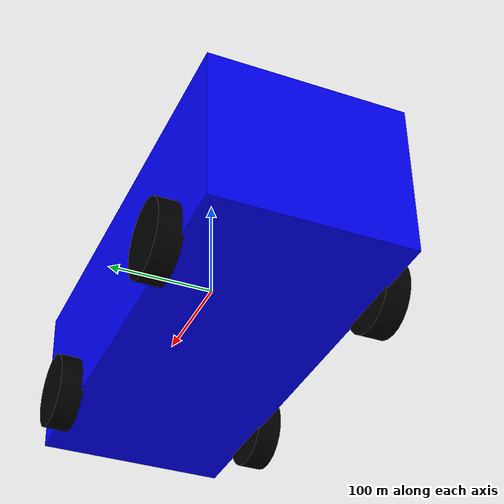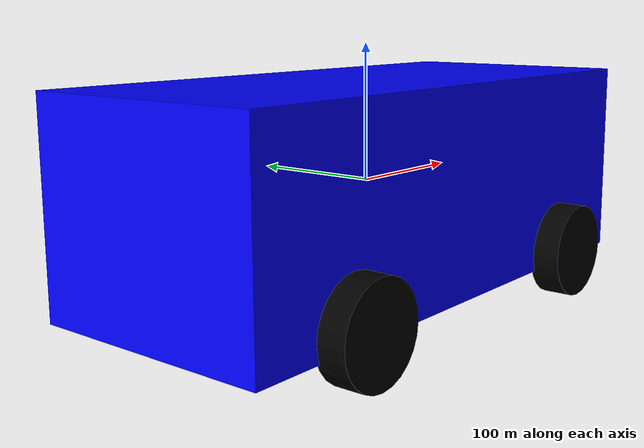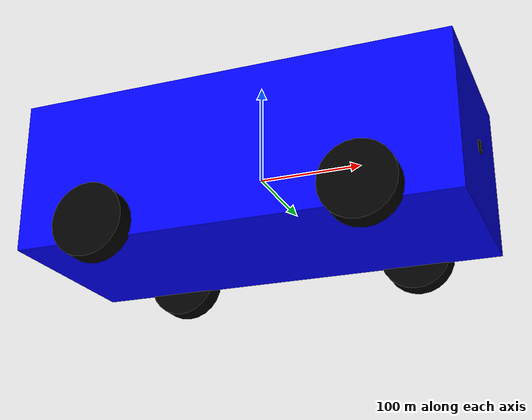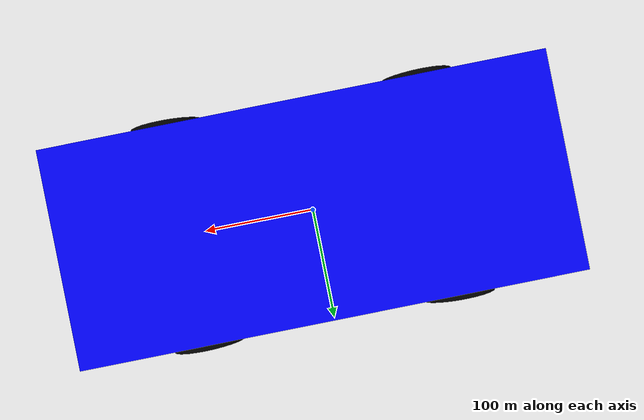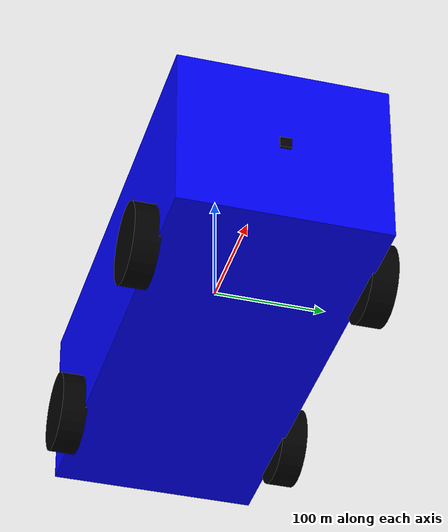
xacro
<?xml version="1.0"?>
<robot xmlns:xacro="http://www.ros.org/wiki/xacro" name="four_wheels_robot">
       <xacro:property name="PI" value="3.141592653589793"/>

    <xacro:property name="chasis_width" value="423.3"/>
    <xacro:property name="chasis_length" value="183.6"/>
    <xacro:property name="chasis_height" value="150"/>
    <xacro:property name="chasis_mass" value="1"/>

    <xacro:property name="wheel_mass" value="11"/>
    <xacro:property name="wheel_radius" value="35.5"/>
    <xacro:property name="wheel_length" value="22.5"/>

    <xacro:property name="camera_width" value="5"/>
    <xacro:property name="camera_height" value="10"/>
    <xacro:property name="camera_length" value="10"/>
    <xacro:property name="camera_mass" value="1.0"/>

    <xacro:include filename="$(find four_wheels_robot)/urdf/inertial_commons.xacro"/>
     <xacro:include filename="$(find four_wheels_robot)/urdf/camera.xacro"/>
  <!-- Chassis -->
   <link name="base_footprint">

   </link>
    <link name="body_link">
        <visual>
        <geometry>
            <box size="${chasis_width} ${chasis_length} ${chasis_height}"/>
        </geometry>
        <material name="blue">
            <color rgba="0 0 1 1"/>
        </material>
        </visual>
        <collision>
        <geometry>
            <box size="${chasis_width} ${chasis_length} ${chasis_height}"/>
        </geometry>
        </collision>

        <xacro:inertial_box mass="${chasis_mass}" x="${chasis_width}" y="${chasis_length}" z="${chasis_height}">

            <origin xyz="0 0 0" rpy="0 0 0"/>
        </xacro:inertial_box>

    </link>
    <joint name="body_joint" type="fixed">
        <parent link="base_footprint"/>
        <child link="body_link"/>
        <origin xyz="0 0 0" rpy="0 0 0"/>
    </joint>

  <!-- Wheels -->
   <xacro:macro name="wheel" params="name x y z">
        <joint name="${name}_joint" type="continuous" >
            <parent link="body_link"/>
            <child  link="${name}_link" />
            <origin xyz="${x} ${y} ${z}" rpy="0 0 0" />
            <axis xyz="0 1 0"/>
        </joint>
        <link name="${name}_link">
            <xacro:inertial_cylinder mass="${wheel_mass}" length="${wheel_length}" radius="${wheel_radius}">
                <origin xyz="0 0 0" rpy="0 0 0"/>
            </xacro:inertial_cylinder>
            <visual>
                <origin rpy="${PI/2} 0 0" xyz="0 0 0"/>
                <geometry>
                    <cylinder length="${wheel_length}" radius="${wheel_radius}"/>
                </geometry>

                <material name="black">
                    <color rgba="0 0 0 1"/>
                </material>
            </visual>
            <collision>
                <origin rpy="${PI/2} 0 0" xyz="0 0 0"/>
                <geometry>
                    <cylinder length="${wheel_length}" radius="${wheel_radius}"/>
                </geometry>
            </collision>
        </link>
    </xacro:macro>
    <xacro:wheel name="front_left" x="${chasis_width*0.3}" y="${chasis_length/2 + wheel_length/2*0.8}" z="${-chasis_height/2*1.3+wheel_radius}"/>
    <xacro:wheel name="front_right" x="${chasis_width*0.3}" y="${-chasis_length/2 - wheel_length/2*0.8}" z="${-chasis_height/2*1.3+wheel_radius}"/>
    <xacro:wheel name="rear_left" x="${-chasis_width*0.3}" y="${chasis_length/2 + wheel_length/2*0.8}" z="${-chasis_height/2*1.3+wheel_radius}"/>
    <xacro:wheel name="rear_right" x="${-chasis_width*0.3}" y="${-chasis_length/2 - wheel_length/2*0.8}" z="${-chasis_height/2*1.3+wheel_radius}"/>

</robot>

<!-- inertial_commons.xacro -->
<robot xmlns:xacro="http://www.ros.org/wiki/xacro" >

    <!-- Specify some standard inertial calculations https://en.wikipedia.org/wiki/List_of_moments_of_inertia -->
    <!-- These make use of xacro's mathematical functionality -->

    <xacro:macro name="inertial_sphere" params="mass radius *origin">
        <inertial>
            <xacro:insert_block name="origin"/>
            <mass value="${mass}" />
            <inertia ixx="${(2/5) * mass * (radius*radius)}" ixy="0.0" ixz="0.0"
                    iyy="${(2/5) * mass * (radius*radius)}" iyz="0.0"
                    izz="${(2/5) * mass * (radius*radius)}" />
        </inertial>
    </xacro:macro>

    <xacro:macro name="inertial_box" params="mass x y z *origin">
        <inertial>
            <xacro:insert_block name="origin"/>
            <mass value="${mass}" />
            <inertia ixx="${(1/12) * mass * (y*y+z*z)}" ixy="0.0" ixz="0.0"
                    iyy="${(1/12) * mass * (x*x+z*z)}" iyz="0.0"
                    izz="${(1/12) * mass * (x*x+y*y)}" />
        </inertial>
    </xacro:macro>

    <xacro:macro name="inertial_cylinder" params="mass length radius *origin">
        <inertial>
            <xacro:insert_block name="origin"/>
            <mass value="${mass}" />
            <inertia ixx="${(1/12) * mass * (3*radius*radius + length*length)}" ixy="0.0" ixz="0.0"
                    iyy="${(1/12) * mass * (3*radius*radius + length*length)}" iyz="0.0"
                    izz="${(1/2) * mass * (radius*radius)}" />
        </inertial>
    </xacro:macro>

</robot>

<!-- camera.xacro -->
<robot xmlns:xacro="http://www.ros.org/wiki/xacro" >

    <xacro:macro name="camera" params="name x y z ">
        <link name="${name}_link">
            <visual>
                <geometry>
                    <box size="${camera_width} ${camera_length} ${camera_height}"/>
                </geometry>
                <material name="black">
                    <color rgba="0 0 0 1"/>
                </material>
            </visual>
            <collision>
                <geometry>
                    <box size="${camera_width} ${camera_length} ${camera_height}"/>
                </geometry>
            </collision>

            <xacro:inertial_box mass="${camera_mass}" x="${camera_width}" y="${camera_length}" z="${camera_height}">
                <origin xyz="0 0 0" rpy="0 0 0"/>
            </xacro:inertial_box>

        </link>

        <joint name="${name}_joint" type="fixed">
            <parent link="body_link"/>
            <child link="${name}_link"/>
            <origin xyz="${x} ${y} ${z}" rpy="0 0 0"/>
        </joint>

        <gazebo reference="${name}_link">

            <sensor name="camera" type="camera" >
                <always_on>true</always_on>
                <update_rate>30.0</update_rate>
                <visualize>true</visualize>
                <camera>
                    <horizontal_fov>1.047</horizontal_fov>
                    <image>
                        <width>640</width>
                        <height>480</height>
                        <format>R8G8B8</format>
                    </image>
                    <clip>
                        <near>0.1</near>
                        <far>100</far>
                    </clip>
            </camera>
            <plugin name="camera_plugin" filename="libgazebo_ros_camera.so">
                <robotNamespace>/four_wheels_robot</robotNamespace>
                <cameraName>camera</cameraName>
                <imageTopicName>image_raw</imageTopicName>
                <cameraInfoTopicName>camera_info</cameraInfoTopicName>
                <frameName>${name}_link</frameName>
                <ros>
                    <remapping>image_raw:=/${name}/image_raw</remapping>
                </ros>
            </plugin>
            <!-- Sensor camera -->
            </sensor>
        </gazebo>
    </xacro:macro>

    <xacro:camera name="camera" x="${chasis_width/2}" y="0" z="0.0"/>

</robot>
